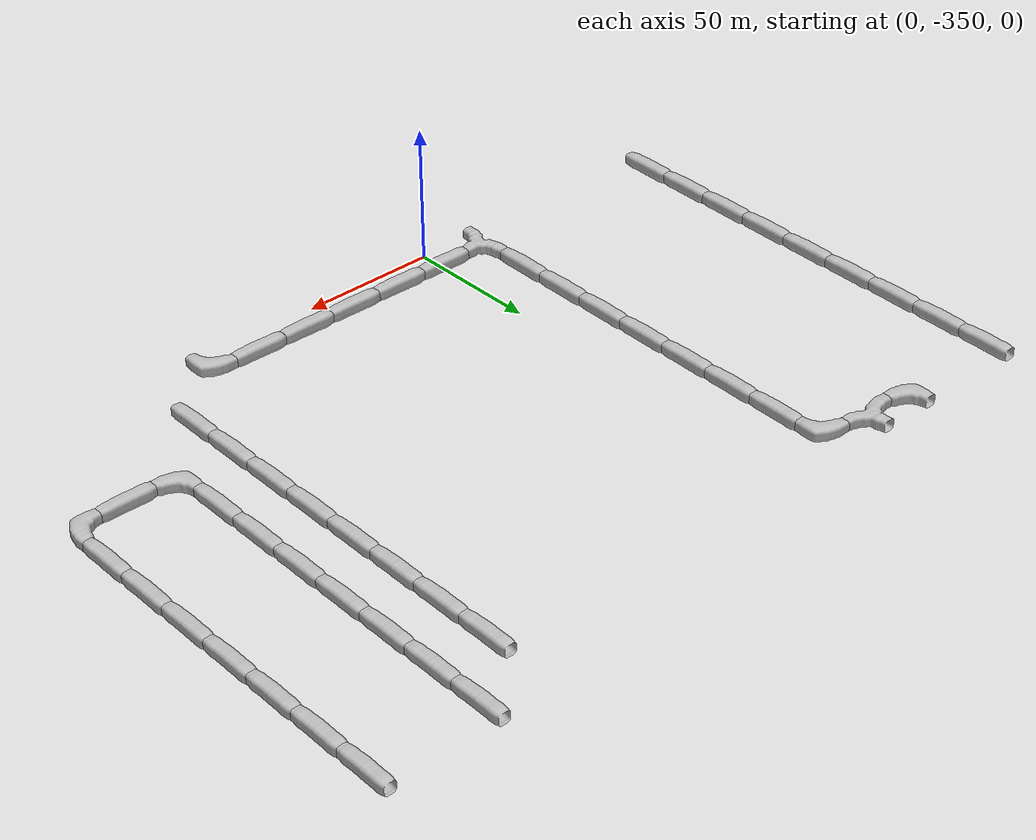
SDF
<sdf version="1.6">
 <world name="cave_16000_0">
  <include>
   <static>true</static>
   <name>cave_7_-8</name>
   <pose>140 -160 0 0 0 0.0</pose>
   <uri>model://cave_straight_20m</uri>
  </include>
  <include>
   <static>true</static>
   <name>cave_7_-9</name>
   <pose>140 -180 0 0 0 0.0</pose>
   <uri>model://cave_straight_20m</uri>
  </include>
  <include>
   <static>true</static>
   <name>cave_7_-10</name>
   <pose>140 -200 0 0 0 0.0</pose>
   <uri>model://cave_straight_20m</uri>
  </include>
  <include>
   <static>true</static>
   <name>cave_7_-11</name>
   <pose>140 -220 0 0 0 0.0</pose>
   <uri>model://cave_straight_20m</uri>
  </include>
  <include>
   <static>true</static>
   <name>cave_7_-12</name>
   <pose>140 -240 0 0 0 0.0</pose>
   <uri>model://cave_straight_20m</uri>
  </include>
  <include>
   <static>true</static>
   <name>cave_7_-13</name>
   <pose>140 -260 0 0 0 0.0</pose>
   <uri>model://cave_straight_20m</uri>
  </include>
  <include>
   <static>true</static>
   <name>cave_7_-14</name>
   <pose>140 -280 0 0 0 0.0</pose>
   <uri>model://cave_straight_20m</uri>
  </include>
  <include>
   <static>true</static>
   <name>cave_7_-15</name>
   <pose>140 -300 0 0 0 0.0</pose>
   <uri>model://cave_L_20m</uri>
  </include>
  <include>
   <static>true</static>
   <name>cave_8_-15</name>
   <pose>160 -300 0 0 0 1.5707963267948966</pose>
   <uri>model://cave_straight_20m</uri>
  </include>
  <include>
   <static>true</static>
   <name>cave_9_-15</name>
   <pose>180 -300 0 0 0 1.5707963267948966</pose>
   <uri>model://cave_L_20m</uri>
  </include>
  <include>
   <static>true</static>
   <name>cave_9_-14</name>
   <pose>180 -280 0 0 0 0.0</pose>
   <uri>model://cave_straight_20m</uri>
  </include>
  <include>
   <static>true</static>
   <name>cave_9_-13</name>
   <pose>180 -260 0 0 0 0.0</pose>
   <uri>model://cave_straight_20m</uri>
  </include>
  <include>
   <static>true</static>
   <name>cave_9_-12</name>
   <pose>180 -240 0 0 0 0.0</pose>
   <uri>model://cave_straight_20m</uri>
  </include>
  <include>
   <static>true</static>
   <name>cave_9_-11</name>
   <pose>180 -220 0 0 0 0.0</pose>
   <uri>model://cave_straight_20m</uri>
  </include>
  <include>
   <static>true</static>
   <name>cave_9_-10</name>
   <pose>180 -200 0 0 0 0.0</pose>
   <uri>model://cave_straight_20m</uri>
  </include>
  <include>
   <static>true</static>
   <name>cave_9_-9</name>
   <pose>180 -180 0 0 0 0.0</pose>
   <uri>model://cave_straight_20m</uri>
  </include>
  <include>
   <static>true</static>
   <name>cave_9_-8</name>
   <pose>180 -160 0 0 0 0.0</pose>
   <uri>model://cave_straight_20m</uri>
  </include>
  <include>
   <static>true</static>
   <name>cave_6_-9</name>
   <pose>120 -180 0 0 0 0.0</pose>
   <uri>model://cave_straight_20m</uri>
  </include>
  <include>
   <static>true</static>
   <name>cave_6_-10</name>
   <pose>120 -200 0 0 0 0.0</pose>
   <uri>model://cave_straight_20m</uri>
  </include>
  <include>
   <static>true</static>
   <name>cave_6_-11</name>
   <pose>120 -220 0 0 0 0.0</pose>
   <uri>model://cave_straight_20m</uri>
  </include>
  <include>
   <static>true</static>
   <name>cave_6_-12</name>
   <pose>120 -240 0 0 0 0.0</pose>
   <uri>model://cave_straight_20m</uri>
  </include>
  <include>
   <static>true</static>
   <name>cave_6_-13</name>
   <pose>120 -260 0 0 0 0.0</pose>
   <uri>model://cave_straight_20m</uri>
  </include>
  <include>
   <static>true</static>
   <name>cave_6_-14</name>
   <pose>120 -280 0 0 0 0.0</pose>
   <uri>model://cave_straight_20m</uri>
  </include>
  <include>
   <static>true</static>
   <name>cave_6_-15</name>
   <pose>120 -300 0 0 0 0.0</pose>
   <uri>model://cave_straight_20m</uri>
  </include>
  <include>
   <static>true</static>
   <name>cave_6_-16</name>
   <pose>120 -320 0 0 0 0.0</pose>
   <uri>model://cave_straight_20m</uri>
  </include>
  <include>
   <static>true</static>
   <name>cave_5_-17</name>
   <pose>100 -340 0 0 0 3.141592653589793</pose>
   <uri>model://cave_L_20m</uri>
  </include>
  <include>
   <static>true</static>
   <name>cave_4_-17</name>
   <pose>80 -340 0 0 0 1.5707963267948966</pose>
   <uri>model://cave_straight_20m</uri>
  </include>
  <include>
   <static>true</static>
   <name>cave_3_-17</name>
   <pose>60 -340 0 0 0 1.5707963267948966</pose>
   <uri>model://cave_straight_20m</uri>
  </include>
  <include>
   <static>true</static>
   <name>cave_2_-17</name>
   <pose>40 -340 0 0 0 1.5707963267948966</pose>
   <uri>model://cave_straight_20m</uri>
  </include>
  <include>
   <static>true</static>
   <name>cave_1_-17</name>
   <pose>20 -340 0 0 0 1.5707963267948966</pose>
   <uri>model://cave_straight_20m</uri>
  </include>
  <include>
   <static>true</static>
   <name>cave_0_-17</name>
   <pose>0 -340 0 0 0 1.5707963267948966</pose>
   <uri>model://cave_straight_20m</uri>
  </include>
  <include>
   <static>true</static>
   <name>cave_-1_-17</name>
   <pose>-20 -340 0 0 0 -1.5707963267948966</pose>
   <uri>model://cave_3way_20m</uri>
  </include>
  <include>
   <static>true</static>
   <name>cave_-1_-16</name>
   <pose>-20 -320 0 0 0 0.0</pose>
   <uri>model://cave_straight_20m</uri>
  </include>
  <include>
   <static>true</static>
   <name>cave_-1_-15</name>
   <pose>-20 -300 0 0 0 0.0</pose>
   <uri>model://cave_straight_20m</uri>
  </include>
  <include>
   <static>true</static>
   <name>cave_-1_-14</name>
   <pose>-20 -280 0 0 0 0.0</pose>
   <uri>model://cave_straight_20m</uri>
  </include>
  <include>
   <static>true</static>
   <name>cave_-1_-13</name>
   <pose>-20 -260 0 0 0 0.0</pose>
   <uri>model://cave_straight_20m</uri>
  </include>
  <include>
   <static>true</static>
   <name>cave_-1_-12</name>
   <pose>-20 -240 0 0 0 0.0</pose>
   <uri>model://cave_straight_20m</uri>
  </include>
  <include>
   <static>true</static>
   <name>cave_-1_-11</name>
   <pose>-20 -220 0 0 0 0.0</pose>
   <uri>model://cave_straight_20m</uri>
  </include>
  <include>
   <static>true</static>
   <name>cave_-1_-10</name>
   <pose>-20 -200 0 0 0 0.0</pose>
   <uri>model://cave_straight_20m</uri>
  </include>
  <include>
   <static>true</static>
   <name>cave_-1_-9</name>
   <pose>-20 -180 0 0 0 3.141592653589793</pose>
   <uri>model://cave_L_20m</uri>
  </include>
  <include>
   <static>true</static>
   <name>cave_-2_-9</name>
   <pose>-40 -180 0 0 0 0.0</pose>
   <uri>model://cave_3way_20m</uri>
  </include>
  <include>
   <static>true</static>
   <name>cave_-3_-9</name>
   <pose>-60 -180 0 0 0 0.0</pose>
   <uri>model://cave_L_20m</uri>
  </include>
  <include>
   <static>true</static>
   <name>cave_-5_-9</name>
   <pose>-100 -180 0 0 0 0.0</pose>
   <uri>model://cave_straight_20m</uri>
  </include>
  <include>
   <static>true</static>
   <name>cave_-5_-10</name>
   <pose>-100 -200 0 0 0 0.0</pose>
   <uri>model://cave_straight_20m</uri>
  </include>
  <include>
   <static>true</static>
   <name>cave_-5_-11</name>
   <pose>-100 -220 0 0 0 0.0</pose>
   <uri>model://cave_straight_20m</uri>
  </include>
  <include>
   <static>true</static>
   <name>cave_-5_-12</name>
   <pose>-100 -240 0 0 0 0.0</pose>
   <uri>model://cave_straight_20m</uri>
  </include>
  <include>
   <static>true</static>
   <name>cave_-5_-13</name>
   <pose>-100 -260 0 0 0 0.0</pose>
   <uri>model://cave_straight_20m</uri>
  </include>
  <include>
   <static>true</static>
   <name>cave_-5_-14</name>
   <pose>-100 -280 0 0 0 0.0</pose>
   <uri>model://cave_straight_20m</uri>
  </include>
  <include>
   <static>true</static>
   <name>cave_-5_-15</name>
   <pose>-100 -300 0 0 0 0.0</pose>
   <uri>model://cave_straight_20m</uri>
  </include>
  <include>
   <static>true</static>
   <name>cave_-5_-16</name>
   <pose>-100 -320 0 0 0 0.0</pose>
   <uri>model://cave_straight_20m</uri>
  </include>
  <include>
   <static>true</static>
   <name>cave_-5_-17</name>
   <pose>-100 -340 0 0 0 0.0</pose>
   <uri>model://cave_straight_20m</uri>
  </include>
 </world>
</sdf>
